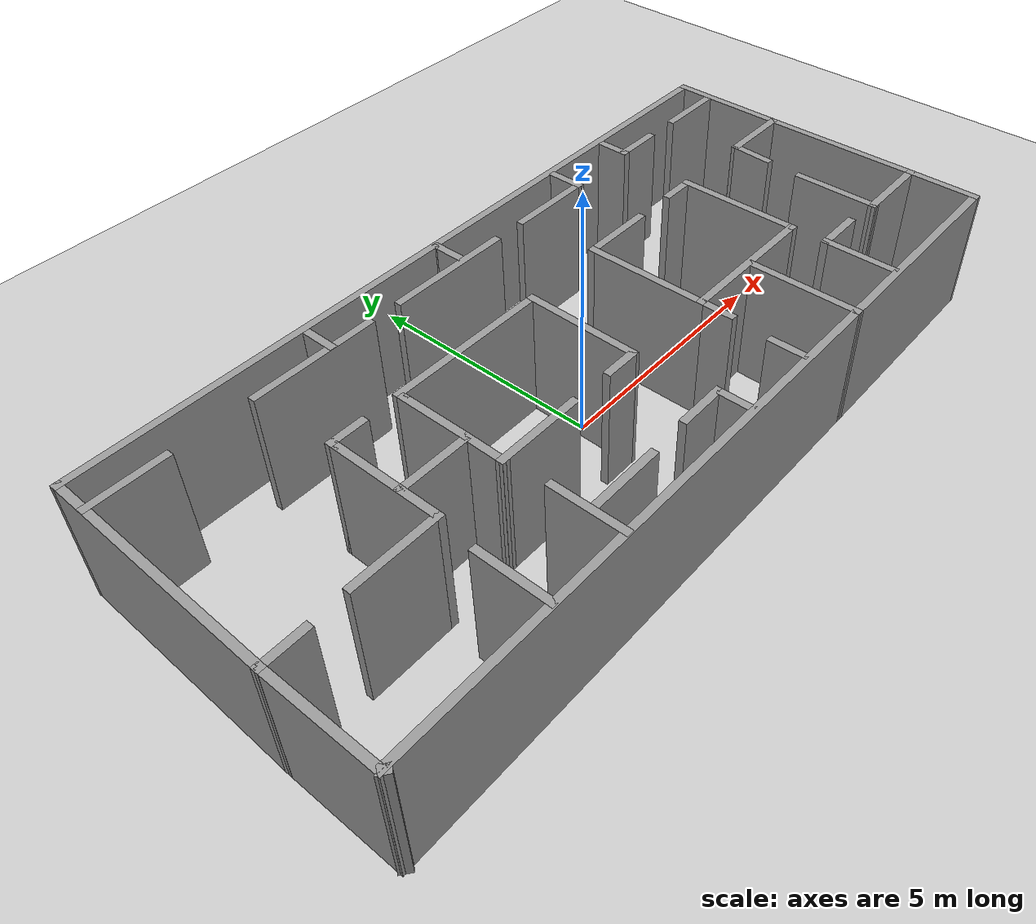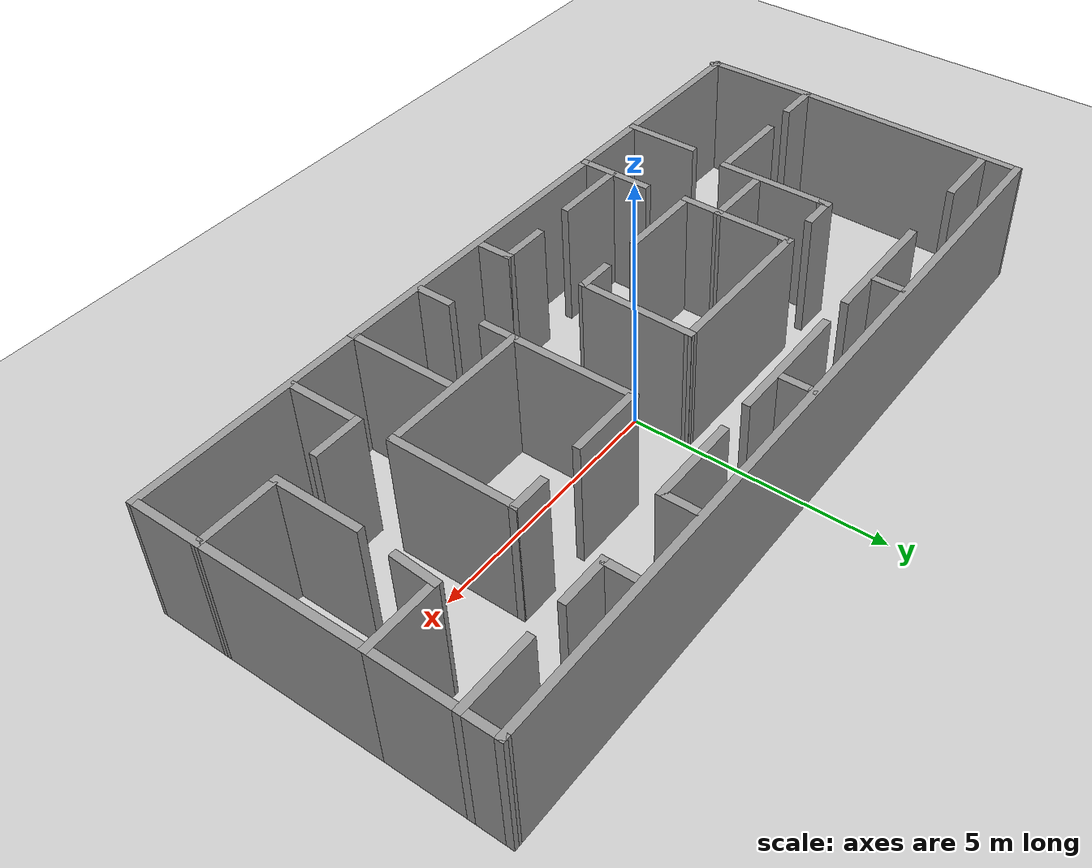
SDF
<sdf version='1.4'>
  <world name='default'>
    <!-- A global light source -->
    <include>
      <uri>model://sun</uri>
    </include>

    <!-- A ground plane -->
    <include>
      <uri>model://ground_plane</uri>
    </include>

    <physics type="ode">
      <real_time_update_rate>1000.0</real_time_update_rate>
      <max_step_size>0.001</max_step_size>
      <real_time_factor>1</real_time_factor>
      <ode>
        <solver>
          <type>quick</type>
          <iters>150</iters>
          <precon_iters>0</precon_iters>
          <sor>1.400000</sor>
          <use_dynamic_moi_rescaling>1</use_dynamic_moi_rescaling>
        </solver>
        <constraints>
          <cfm>0.00001</cfm>
          <erp>0.2</erp>
          <contact_max_correcting_vel>2000.000000</contact_max_correcting_vel>
          <contact_surface_layer>0.01000</contact_surface_layer>
        </constraints>
      </ode>
    </physics>

    <!-- A turtlebot symbol -->
    <include>
      <uri>model://turtlebot3_hotel</uri>
    </include>

    <scene>
      <ambient>0.4 0.4 0.4 1</ambient>
      <background>0.7 0.7 0.7 1</background>
      <shadows>true</shadows>
    </scene>

    <gui fullscreen='0'>
      <camera name='user_camera'>
        <pose>0.0 0.0 17.0 0 1.5708 0</pose>
        <view_controller>orbit</view_controller>
      </camera>
    </gui>
  </world>
</sdf>

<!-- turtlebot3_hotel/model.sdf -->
<sdf version='1.7'>
  <model name='hotel'>
    <pose>-0.021419 0.009748 0 0 -0 0</pose>
    <link name='Wall_101'>
      <collision name='Wall_101_Collision'>
        <geometry>
          <box>
            <size>1.5 0.15 2.5</size>
          </box>
        </geometry>
        <pose>0 0 1.25 0 -0 0</pose>
      </collision>
      <visual name='Wall_101_Visual'>
        <pose>0 0 1.25 0 -0 0</pose>
        <geometry>
          <box>
            <size>1.5 0.15 2.5</size>
          </box>
        </geometry>
        <material>
          <script>
            <uri>file://media/materials/scripts/gazebo.material</uri>
            <name>Gazebo/Grey</name>
          </script>
          <ambient>1 1 1 1</ambient>
        </material>
        <meta>
          <layer>0</layer>
        </meta>
      </visual>
      <pose>-4.60004 -2.64984 0 0 -0 -1.5708</pose>
    </link>
    <link name='Wall_103'>
      <collision name='Wall_103_Collision'>
        <geometry>
          <box>
            <size>1.5 0.15 2.5</size>
          </box>
        </geometry>
        <pose>0 0 1.25 0 -0 0</pose>
      </collision>
      <visual name='Wall_103_Visual'>
        <pose>0 0 1.25 0 -0 0</pose>
        <geometry>
          <box>
            <size>1.5 0.15 2.5</size>
          </box>
        </geometry>
        <material>
          <script>
            <uri>file://media/materials/scripts/gazebo.material</uri>
            <name>Gazebo/Grey</name>
          </script>
          <ambient>1 1 1 1</ambient>
        </material>
        <meta>
          <layer>0</layer>
        </meta>
      </visual>
      <pose>-3.06004 -2.65984 0 0 -0 -1.5708</pose>
    </link>
    <link name='Wall_105'>
      <collision name='Wall_105_Collision'>
        <geometry>
          <box>
            <size>1.5 0.15 2.5</size>
          </box>
        </geometry>
        <pose>0 0 1.25 0 -0 0</pose>
      </collision>
      <visual name='Wall_105_Visual'>
        <pose>0 0 1.25 0 -0 0</pose>
        <geometry>
          <box>
            <size>1.5 0.15 2.5</size>
          </box>
        </geometry>
        <material>
          <script>
            <uri>file://media/materials/scripts/gazebo.material</uri>
            <name>Gazebo/Grey</name>
          </script>
          <ambient>1 1 1 1</ambient>
        </material>
        <meta>
          <layer>0</layer>
        </meta>
      </visual>
      <pose>-2.33504 -2.71484 0 0 -0 0</pose>
    </link>
    <link name='Wall_107'>
      <collision name='Wall_107_Collision'>
        <geometry>
          <box>
            <size>1 0.15 2.5</size>
          </box>
        </geometry>
        <pose>0 0 1.25 0 -0 0</pose>
      </collision>
      <visual name='Wall_107_Visual'>
        <pose>0 0 1.25 0 -0 0</pose>
        <geometry>
          <box>
            <size>1 0.15 2.5</size>
          </box>
        </geometry>
        <material>
          <script>
            <uri>file://media/materials/scripts/gazebo.material</uri>
            <name>Gazebo/Grey</name>
          </script>
          <ambient>1 1 1 1</ambient>
        </material>
        <meta>
          <layer>0</layer>
        </meta>
      </visual>
      <pose>-0.365044 -2.68484 0 0 -0 0</pose>
    </link>
    <link name='Wall_108'>
      <collision name='Wall_108_Collision'>
        <geometry>
          <box>
            <size>0.75 0.15 2.5</size>
          </box>
        </geometry>
        <pose>0 0 1.25 0 -0 0</pose>
      </collision>
      <visual name='Wall_108_Visual'>
        <pose>0 0 1.25 0 -0 0</pose>
        <geometry>
          <box>
            <size>0.75 0.15 2.5</size>
          </box>
        </geometry>
        <material>
          <script>
            <uri>file://media/materials/scripts/gazebo.material</uri>
            <name>Gazebo/Grey</name>
          </script>
          <ambient>1 1 1 1</ambient>
        </material>
        <meta>
          <layer>0</layer>
        </meta>
      </visual>
      <pose>0.059956 -2.98484 0 0 -0 -1.5708</pose>
    </link>
    <link name='Wall_111'>
      <collision name='Wall_111_Collision'>
        <geometry>
          <box>
            <size>0.75 0.15 2.5</size>
          </box>
        </geometry>
        <pose>0 0 1.25 0 -0 0</pose>
      </collision>
      <visual name='Wall_111_Visual'>
        <pose>0 0 1.25 0 -0 0</pose>
        <geometry>
          <box>
            <size>0.75 0.15 2.5</size>
          </box>
        </geometry>
        <material>
          <script>
            <uri>file://media/materials/scripts/gazebo.material</uri>
            <name>Gazebo/Grey</name>
          </script>
          <ambient>1 1 1 1</ambient>
        </material>
        <meta>
          <layer>0</layer>
        </meta>
      </visual>
      <pose>1.61996 -2.98484 0 0 -0 -1.5708</pose>
    </link>
    <link name='Wall_113'>
      <collision name='Wall_113_Collision'>
        <geometry>
          <box>
            <size>4.63001 0.15 2.5</size>
          </box>
        </geometry>
        <pose>0 0 1.25 0 -0 0</pose>
      </collision>
      <visual name='Wall_113_Visual'>
        <pose>0 0 1.25 0 -0 0</pose>
        <geometry>
          <box>
            <size>4.63001 0.15 2.5</size>
          </box>
        </geometry>
        <material>
          <script>
            <uri>file://media/materials/scripts/gazebo.material</uri>
            <name>Gazebo/Grey</name>
          </script>
          <ambient>1 1 1 1</ambient>
        </material>
        <meta>
          <layer>0</layer>
        </meta>
      </visual>
      <pose>5.38996 -3.36984 0 0 -0 0.002232</pose>
    </link>
    <link name='Wall_114'>
      <collision name='Wall_114_Collision'>
        <geometry>
          <box>
            <size>1.5 0.15 2.5</size>
          </box>
        </geometry>
        <pose>0 0 1.25 0 -0 0</pose>
      </collision>
      <visual name='Wall_114_Visual'>
        <pose>0 0 1.25 0 -0 0</pose>
        <geometry>
          <box>
            <size>1.5 0.15 2.5</size>
          </box>
        </geometry>
        <material>
          <script>
            <uri>file://media/materials/scripts/gazebo.material</uri>
            <name>Gazebo/Grey</name>
          </script>
          <ambient>1 1 1 1</ambient>
        </material>
        <meta>
          <layer>0</layer>
        </meta>
      </visual>
      <pose>7.62996 -2.68984 0 0 -0 1.5708</pose>
    </link>
    <link name='Wall_115'>
      <collision name='Wall_115_Collision'>
        <geometry>
          <box>
            <size>1.63003 0.15 2.5</size>
          </box>
        </geometry>
        <pose>0 0 1.25 0 -0 0</pose>
      </collision>
      <visual name='Wall_115_Visual'>
        <pose>0 0 1.25 0 -0 0</pose>
        <geometry>
          <box>
            <size>1.63003 0.15 2.5</size>
          </box>
        </geometry>
        <material>
          <script>
            <uri>file://media/materials/scripts/gazebo.material</uri>
            <name>Gazebo/Grey</name>
          </script>
          <ambient>1 1 1 1</ambient>
        </material>
        <meta>
          <layer>0</layer>
        </meta>
      </visual>
      <pose>6.88996 -2.01984 0 0 -0 -3.13484</pose>
    </link>
    <link name='Wall_116'>
      <collision name='Wall_116_Collision'>
        <geometry>
          <box>
            <size>1.75 0.15 2.5</size>
          </box>
        </geometry>
        <pose>0 0 1.25 0 -0 0</pose>
      </collision>
      <visual name='Wall_116_Visual'>
        <pose>0 0 1.25 0 -0 0</pose>
        <geometry>
          <box>
            <size>1.75 0.15 2.5</size>
          </box>
        </geometry>
        <material>
          <script>
            <uri>file://media/materials/scripts/gazebo.material</uri>
            <name>Gazebo/Grey</name>
          </script>
          <ambient>1 1 1 1</ambient>
        </material>
        <meta>
          <layer>0</layer>
        </meta>
      </visual>
      <pose>6.14996 -1.22484 0 0 -0 1.5708</pose>
    </link>
    <link name='Wall_118'>
      <collision name='Wall_118_Collision'>
        <geometry>
          <box>
            <size>1 0.15 2.5</size>
          </box>
        </geometry>
        <pose>0 0 1.25 0 -0 0</pose>
      </collision>
      <visual name='Wall_118_Visual'>
        <pose>0 0 1.25 0 -0 0</pose>
        <geometry>
          <box>
            <size>1 0.15 2.5</size>
          </box>
        </geometry>
        <material>
          <script>
            <uri>file://media/materials/scripts/gazebo.material</uri>
            <name>Gazebo/Grey</name>
          </script>
          <ambient>1 1 1 1</ambient>
        </material>
        <meta>
          <layer>0</layer>
        </meta>
      </visual>
      <pose>4.99496 -1.94484 0 0 -0 3.14159</pose>
    </link>
    <link name='Wall_119'>
      <collision name='Wall_119_Collision'>
        <geometry>
          <box>
            <size>1.5 0.15 2.5</size>
          </box>
        </geometry>
        <pose>0 0 1.25 0 -0 0</pose>
      </collision>
      <visual name='Wall_119_Visual'>
        <pose>0 0 1.25 0 -0 0</pose>
        <geometry>
          <box>
            <size>1.5 0.15 2.5</size>
          </box>
        </geometry>
        <material>
          <script>
            <uri>file://media/materials/scripts/gazebo.material</uri>
            <name>Gazebo/Grey</name>
          </script>
          <ambient>1 1 1 1</ambient>
        </material>
        <meta>
          <layer>0</layer>
        </meta>
      </visual>
      <pose>4.56996 -2.61984 0 0 -0 -1.5708</pose>
    </link>
    <link name='Wall_124'>
      <collision name='Wall_124_Collision'>
        <geometry>
          <box>
            <size>1.5 0.15 2.5</size>
          </box>
        </geometry>
        <pose>0 0 1.25 0 -0 0</pose>
      </collision>
      <visual name='Wall_124_Visual'>
        <pose>0 0 1.25 0 -0 0</pose>
        <geometry>
          <box>
            <size>1.5 0.15 2.5</size>
          </box>
        </geometry>
        <material>
          <script>
            <uri>file://media/materials/scripts/gazebo.material</uri>
            <name>Gazebo/Grey</name>
          </script>
          <ambient>1 1 1 1</ambient>
        </material>
        <meta>
          <layer>0</layer>
        </meta>
      </visual>
      <pose>6.93496 1.12516 0 0 -0 0</pose>
    </link>
    <link name='Wall_126'>
      <collision name='Wall_126_Collision'>
        <geometry>
          <box>
            <size>3.29006 0.15 2.5</size>
          </box>
        </geometry>
        <pose>0 0 1.25 0 -0 0</pose>
      </collision>
      <visual name='Wall_126_Visual'>
        <pose>0 0 1.25 0 -0 0</pose>
        <geometry>
          <box>
            <size>3.29006 0.15 2.5</size>
          </box>
        </geometry>
        <material>
          <script>
            <uri>file://media/materials/scripts/gazebo.material</uri>
            <name>Gazebo/Grey</name>
          </script>
          <ambient>1 1 1 1</ambient>
        </material>
        <meta>
          <layer>0</layer>
        </meta>
      </visual>
      <pose>7.61996 -0.444841 0 0 -0 -1.56443</pose>
    </link>
    <link name='Wall_128'>
      <collision name='Wall_128_Collision'>
        <geometry>
          <box>
            <size>0.911643 0.15 2.5</size>
          </box>
        </geometry>
        <pose>0 0 1.25 0 -0 0</pose>
      </collision>
      <visual name='Wall_128_Visual'>
        <pose>0 0 1.25 0 -0 0</pose>
        <geometry>
          <box>
            <size>0.911643 0.15 2.5</size>
          </box>
        </geometry>
        <material>
          <script>
            <uri>file://media/materials/scripts/gazebo.material</uri>
            <name>Gazebo/Grey</name>
          </script>
          <ambient>1 1 1 1</ambient>
        </material>
        <meta>
          <layer>0</layer>
        </meta>
      </visual>
      <pose>6.23496 0.745159 0 0 -0 1.5051</pose>
    </link>
    <link name='Wall_130'>
      <collision name='Wall_130_Collision'>
        <geometry>
          <box>
            <size>2.43 0.15 2.5</size>
          </box>
        </geometry>
        <pose>0 0 1.25 0 -0 0</pose>
      </collision>
      <visual name='Wall_130_Visual'>
        <pose>0 0 1.25 0 -0 0</pose>
        <geometry>
          <box>
            <size>2.43 0.15 2.5</size>
          </box>
        </geometry>
        <material>
          <script>
            <uri>file://media/materials/scripts/gazebo.material</uri>
            <name>Gazebo/Grey</name>
          </script>
          <ambient>1 1 1 1</ambient>
        </material>
        <meta>
          <layer>0</layer>
        </meta>
      </visual>
      <pose>7.60996 2.26516 0 0 -0 1.5708</pose>
    </link>
    <link name='Wall_132'>
      <collision name='Wall_132_Collision'>
        <geometry>
          <box>
            <size>15.3003 0.15 2.5</size>
          </box>
        </geometry>
        <pose>0 0 1.25 0 -0 0</pose>
      </collision>
      <visual name='Wall_132_Visual'>
        <pose>0 0 1.25 0 -0 0</pose>
        <geometry>
          <box>
            <size>15.3003 0.15 2.5</size>
          </box>
        </geometry>
        <material>
          <script>
            <uri>file://media/materials/scripts/gazebo.material</uri>
            <name>Gazebo/Grey</name>
          </script>
          <ambient>1 1 1 1</ambient>
        </material>
        <meta>
          <layer>0</layer>
        </meta>
      </visual>
      <pose>0.034956 3.39516 0 0 -0 -3.14027</pose>
    </link>
    <link name='Wall_133'>
      <collision name='Wall_133_Collision'>
        <geometry>
          <box>
            <size>4.7307 0.15 2.5</size>
          </box>
        </geometry>
        <pose>0 0 1.25 0 -0 0</pose>
      </collision>
      <visual name='Wall_133_Visual'>
        <pose>0 0 1.25 0 -0 0</pose>
        <geometry>
          <box>
            <size>4.7307 0.15 2.5</size>
          </box>
        </geometry>
        <material>
          <script>
            <uri>file://media/materials/scripts/gazebo.material</uri>
            <name>Gazebo/Grey</name>
          </script>
          <ambient>1 1 1 1</ambient>
        </material>
        <meta>
          <layer>0</layer>
        </meta>
      </visual>
      <pose>-7.58004 1.09516 0 0 -0 -1.58826</pose>
    </link>
    <link name='Wall_135'>
      <collision name='Wall_135_Collision'>
        <geometry>
          <box>
            <size>1.5 0.15 2.5</size>
          </box>
        </geometry>
        <pose>0 0 1.25 0 -0 0</pose>
      </collision>
      <visual name='Wall_135_Visual'>
        <pose>0 0 1.25 0 -0 0</pose>
        <geometry>
          <box>
            <size>1.5 0.15 2.5</size>
          </box>
        </geometry>
        <material>
          <script>
            <uri>file://media/materials/scripts/gazebo.material</uri>
            <name>Gazebo/Grey</name>
          </script>
          <ambient>1 1 1 1</ambient>
        </material>
        <meta>
          <layer>0</layer>
        </meta>
      </visual>
      <pose>-6.87504 2.70516 0 0 -0 0</pose>
    </link>
    <link name='Wall_137'>
      <collision name='Wall_137_Collision'>
        <geometry>
          <box>
            <size>2.5 0.15 2.5</size>
          </box>
        </geometry>
        <pose>0 0 1.25 0 -0 0</pose>
      </collision>
      <visual name='Wall_137_Visual'>
        <pose>0 0 1.25 0 -0 0</pose>
        <geometry>
          <box>
            <size>2.5 0.15 2.5</size>
          </box>
        </geometry>
        <material>
          <script>
            <uri>file://media/materials/scripts/gazebo.material</uri>
            <name>Gazebo/Grey</name>
          </script>
          <ambient>1 1 1 1</ambient>
        </material>
        <meta>
          <layer>0</layer>
        </meta>
      </visual>
      <pose>-3.42504 2.69516 0 0 -0 0</pose>
    </link>
    <link name='Wall_139'>
      <collision name='Wall_139_Collision'>
        <geometry>
          <box>
            <size>2.5 0.15 2.5</size>
          </box>
        </geometry>
        <pose>0 0 1.25 0 -0 0</pose>
      </collision>
      <visual name='Wall_139_Visual'>
        <pose>0 0 1.25 0 -0 0</pose>
        <geometry>
          <box>
            <size>2.5 0.15 2.5</size>
          </box>
        </geometry>
        <material>
          <script>
            <uri>file://media/materials/scripts/gazebo.material</uri>
            <name>Gazebo/Grey</name>
          </script>
          <ambient>1 1 1 1</ambient>
        </material>
        <meta>
          <layer>0</layer>
        </meta>
      </visual>
      <pose>-0.365044 2.68516 0 0 -0 0</pose>
    </link>
    <link name='Wall_141'>
      <collision name='Wall_141_Collision'>
        <geometry>
          <box>
            <size>1.75 0.15 2.5</size>
          </box>
        </geometry>
        <pose>0 0 1.25 0 -0 0</pose>
      </collision>
      <visual name='Wall_141_Visual'>
        <pose>0 0 1.25 0 -0 0</pose>
        <geometry>
          <box>
            <size>1.75 0.15 2.5</size>
          </box>
        </geometry>
        <material>
          <script>
            <uri>file://media/materials/scripts/gazebo.material</uri>
            <name>Gazebo/Grey</name>
          </script>
          <ambient>1 1 1 1</ambient>
        </material>
        <meta>
          <layer>0</layer>
        </meta>
      </visual>
      <pose>2.33996 2.68516 0 0 -0 0</pose>
    </link>
    <link name='Wall_142'>
      <collision name='Wall_142_Collision'>
        <geometry>
          <box>
            <size>0.75 0.15 2.5</size>
          </box>
        </geometry>
        <pose>0 0 1.25 0 -0 0</pose>
      </collision>
      <visual name='Wall_142_Visual'>
        <pose>0 0 1.25 0 -0 0</pose>
        <geometry>
          <box>
            <size>0.75 0.15 2.5</size>
          </box>
        </geometry>
        <material>
          <script>
            <uri>file://media/materials/scripts/gazebo.material</uri>
            <name>Gazebo/Grey</name>
          </script>
          <ambient>1 1 1 1</ambient>
        </material>
        <meta>
          <layer>0</layer>
        </meta>
      </visual>
      <pose>3.13996 2.98516 0 0 -0 1.5708</pose>
    </link>
    <link name='Wall_144'>
      <collision name='Wall_144_Collision'>
        <geometry>
          <box>
            <size>0.75 0.15 2.5</size>
          </box>
        </geometry>
        <pose>0 0 1.25 0 -0 0</pose>
      </collision>
      <visual name='Wall_144_Visual'>
        <pose>0 0 1.25 0 -0 0</pose>
        <geometry>
          <box>
            <size>0.75 0.15 2.5</size>
          </box>
        </geometry>
        <material>
          <script>
            <uri>file://media/materials/scripts/gazebo.material</uri>
            <name>Gazebo/Grey</name>
          </script>
          <ambient>1 1 1 1</ambient>
        </material>
        <meta>
          <layer>0</layer>
        </meta>
      </visual>
      <pose>4.63996 3.03516 0 0 -0 -1.5708</pose>
    </link>
    <link name='Wall_145'>
      <collision name='Wall_145_Collision'>
        <geometry>
          <box>
            <size>1 0.15 2.5</size>
          </box>
        </geometry>
        <pose>0 0 1.25 0 -0 0</pose>
      </collision>
      <visual name='Wall_145_Visual'>
        <pose>0 0 1.25 0 -0 0</pose>
        <geometry>
          <box>
            <size>1 0.15 2.5</size>
          </box>
        </geometry>
        <material>
          <script>
            <uri>file://media/materials/scripts/gazebo.material</uri>
            <name>Gazebo/Grey</name>
          </script>
          <ambient>1 1 1 1</ambient>
        </material>
        <meta>
          <layer>0</layer>
        </meta>
      </visual>
      <pose>5.06496 2.73516 0 0 -0 0</pose>
    </link>
    <link name='Wall_147'>
      <collision name='Wall_147_Collision'>
        <geometry>
          <box>
            <size>1.5 0.15 2.5</size>
          </box>
        </geometry>
        <pose>0 0 1.25 0 -0 0</pose>
      </collision>
      <visual name='Wall_147_Visual'>
        <pose>0 0 1.25 0 -0 0</pose>
        <geometry>
          <box>
            <size>1.5 0.15 2.5</size>
          </box>
        </geometry>
        <material>
          <script>
            <uri>file://media/materials/scripts/gazebo.material</uri>
            <name>Gazebo/Grey</name>
          </script>
          <ambient>1 1 1 1</ambient>
        </material>
        <meta>
          <layer>0</layer>
        </meta>
      </visual>
      <pose>6.93496 2.72516 0 0 -0 0</pose>
    </link>
    <link name='Wall_149'>
      <collision name='Wall_149_Collision'>
        <geometry>
          <box>
            <size>0.75 0.15 2.5</size>
          </box>
        </geometry>
        <pose>0 0 1.25 0 -0 0</pose>
      </collision>
      <visual name='Wall_149_Visual'>
        <pose>0 0 1.25 0 -0 0</pose>
        <geometry>
          <box>
            <size>0.75 0.15 2.5</size>
          </box>
        </geometry>
        <material>
          <script>
            <uri>file://media/materials/scripts/gazebo.material</uri>
            <name>Gazebo/Grey</name>
          </script>
          <ambient>1 1 1 1</ambient>
        </material>
        <meta>
          <layer>0</layer>
        </meta>
      </visual>
      <pose>-3.06004 3.00516 0 0 -0 1.5708</pose>
    </link>
    <link name='Wall_154'>
      <collision name='Wall_154_Collision'>
        <geometry>
          <box>
            <size>0.15 0.15 2.5</size>
          </box>
        </geometry>
        <pose>0 0 1.25 0 -0 0</pose>
      </collision>
      <visual name='Wall_154_Visual'>
        <pose>0 0 1.25 0 -0 0</pose>
        <geometry>
          <box>
            <size>0.15 0.15 2.5</size>
          </box>
        </geometry>
        <material>
          <script>
            <uri>file://media/materials/scripts/gazebo.material</uri>
            <name>Gazebo/Grey</name>
          </script>
          <ambient>1 1 1 1</ambient>
        </material>
        <meta>
          <layer>0</layer>
        </meta>
      </visual>
      <pose>-0.005934 3.35968 0 0 -0 0</pose>
    </link>
    <link name='Wall_156'>
      <collision name='Wall_156_Collision'>
        <geometry>
          <box>
            <size>0.75 0.15 2.5</size>
          </box>
        </geometry>
        <pose>0 0 1.25 0 -0 0</pose>
      </collision>
      <visual name='Wall_156_Visual'>
        <pose>0 0 1.25 0 -0 0</pose>
        <geometry>
          <box>
            <size>0.75 0.15 2.5</size>
          </box>
        </geometry>
        <material>
          <script>
            <uri>file://media/materials/scripts/gazebo.material</uri>
            <name>Gazebo/Grey</name>
          </script>
          <ambient>1 1 1 1</ambient>
        </material>
        <meta>
          <layer>0</layer>
        </meta>
      </visual>
      <pose>-0.005934 3.05968 0 0 -0 -1.5708</pose>
    </link>
    <link name='Wall_59'>
      <collision name='Wall_59_Collision'>
        <geometry>
          <box>
            <size>0.901596 0.15 2.5</size>
          </box>
        </geometry>
        <pose>0 0 1.25 0 -0 0</pose>
      </collision>
      <visual name='Wall_59_Visual'>
        <pose>0 0 1.25 0 -0 0</pose>
        <geometry>
          <box>
            <size>0.901596 0.15 2.5</size>
          </box>
        </geometry>
        <material>
          <script>
            <uri>file://media/materials/scripts/gazebo.material</uri>
            <name>Gazebo/Grey</name>
          </script>
          <ambient>1 1 1 1</ambient>
        </material>
        <meta>
          <layer>0</layer>
        </meta>
      </visual>
      <pose>-7.24446 -1.19237 0 0 -0 0.006566</pose>
    </link>
    <link name='Wall_61'>
      <collision name='Wall_61_Collision'>
        <geometry>
          <box>
            <size>1.75 0.15 2.5</size>
          </box>
        </geometry>
        <pose>0 0 1.25 0 -0 0</pose>
      </collision>
      <visual name='Wall_61_Visual'>
        <pose>0 0 1.25 0 -0 0</pose>
        <geometry>
          <box>
            <size>1.75 0.15 2.5</size>
          </box>
        </geometry>
        <material>
          <script>
            <uri>file://media/materials/scripts/gazebo.material</uri>
            <name>Gazebo/Grey</name>
          </script>
          <ambient>1 1 1 1</ambient>
        </material>
        <meta>
          <layer>0</layer>
        </meta>
      </visual>
      <pose>-5.29799 -1.15668 0 0 -0 0</pose>
    </link>
    <link name='Wall_62'>
      <collision name='Wall_62_Collision'>
        <geometry>
          <box>
            <size>2.25 0.15 2.5</size>
          </box>
        </geometry>
        <pose>0 0 1.25 0 -0 0</pose>
      </collision>
      <visual name='Wall_62_Visual'>
        <pose>0 0 1.25 0 -0 0</pose>
        <geometry>
          <box>
            <size>2.25 0.15 2.5</size>
          </box>
        </geometry>
        <material>
          <script>
            <uri>file://media/materials/scripts/gazebo.material</uri>
            <name>Gazebo/Grey</name>
          </script>
          <ambient>1 1 1 1</ambient>
        </material>
        <meta>
          <layer>0</layer>
        </meta>
      </visual>
      <pose>-4.49799 -0.106683 0 0 -0 1.5708</pose>
    </link>
    <link name='Wall_63'>
      <collision name='Wall_63_Collision'>
        <geometry>
          <box>
            <size>0.25 0.15 2.5</size>
          </box>
        </geometry>
        <pose>0 0 1.25 0 -0 0</pose>
      </collision>
      <visual name='Wall_63_Visual'>
        <pose>0 0 1.25 0 -0 0</pose>
        <geometry>
          <box>
            <size>0.25 0.15 2.5</size>
          </box>
        </geometry>
        <material>
          <script>
            <uri>file://media/materials/scripts/gazebo.material</uri>
            <name>Gazebo/Grey</name>
          </script>
          <ambient>1 1 1 1</ambient>
        </material>
        <meta>
          <layer>0</layer>
        </meta>
      </visual>
      <pose>-4.49799 0.993317 0 0 -0 1.5708</pose>
    </link>
    <link name='Wall_64'>
      <collision name='Wall_64_Collision'>
        <geometry>
          <box>
            <size>0.75 0.15 2.5</size>
          </box>
        </geometry>
        <pose>0 0 1.25 0 -0 0</pose>
      </collision>
      <visual name='Wall_64_Visual'>
        <pose>0 0 1.25 0 -0 0</pose>
        <geometry>
          <box>
            <size>0.75 0.15 2.5</size>
          </box>
        </geometry>
        <material>
          <script>
            <uri>file://media/materials/scripts/gazebo.material</uri>
            <name>Gazebo/Grey</name>
          </script>
          <ambient>1 1 1 1</ambient>
        </material>
        <meta>
          <layer>0</layer>
        </meta>
      </visual>
      <pose>-4.19799 1.04332 0 0 -0 0</pose>
    </link>
    <link name='Wall_66'>
      <collision name='Wall_66_Collision'>
        <geometry>
          <box>
            <size>1.5 0.15 2.5</size>
          </box>
        </geometry>
        <pose>0 0 1.25 0 -0 0</pose>
      </collision>
      <visual name='Wall_66_Visual'>
        <pose>0 0 1.25 0 -0 0</pose>
        <geometry>
          <box>
            <size>1.5 0.15 2.5</size>
          </box>
        </geometry>
        <material>
          <script>
            <uri>file://media/materials/scripts/gazebo.material</uri>
            <name>Gazebo/Grey</name>
          </script>
          <ambient>1 1 1 1</ambient>
        </material>
        <meta>
          <layer>0</layer>
        </meta>
      </visual>
      <pose>-3.81504 -0.404841 0 0 -0 0</pose>
    </link>
    <link name='Wall_67'>
      <collision name='Wall_67_Collision'>
        <geometry>
          <box>
            <size>1.5 0.15 2.5</size>
          </box>
        </geometry>
        <pose>0 0 1.25 0 -0 0</pose>
      </collision>
      <visual name='Wall_67_Visual'>
        <pose>0 0 1.25 0 -0 0</pose>
        <geometry>
          <box>
            <size>1.5 0.15 2.5</size>
          </box>
        </geometry>
        <material>
          <script>
            <uri>file://media/materials/scripts/gazebo.material</uri>
            <name>Gazebo/Grey</name>
          </script>
          <ambient>1 1 1 1</ambient>
        </material>
        <meta>
          <layer>0</layer>
        </meta>
      </visual>
      <pose>-3.14004 0.270159 0 0 -0 1.5708</pose>
    </link>
    <link name='Wall_68'>
      <collision name='Wall_68_Collision'>
        <geometry>
          <box>
            <size>0.25 0.15 2.5</size>
          </box>
        </geometry>
        <pose>0 0 1.25 0 -0 0</pose>
      </collision>
      <visual name='Wall_68_Visual'>
        <pose>0 0 1.25 0 -0 0</pose>
        <geometry>
          <box>
            <size>0.25 0.15 2.5</size>
          </box>
        </geometry>
        <material>
          <script>
            <uri>file://media/materials/scripts/gazebo.material</uri>
            <name>Gazebo/Grey</name>
          </script>
          <ambient>1 1 1 1</ambient>
        </material>
        <meta>
          <layer>0</layer>
        </meta>
      </visual>
      <pose>-3.14004 0.995159 0 0 -0 1.5708</pose>
    </link>
    <link name='Wall_69'>
      <collision name='Wall_69_Collision'>
        <geometry>
          <box>
            <size>3.25 0.15 2.5</size>
          </box>
        </geometry>
        <pose>0 0 1.25 0 -0 0</pose>
      </collision>
      <visual name='Wall_69_Visual'>
        <pose>0 0 1.25 0 -0 0</pose>
        <geometry>
          <box>
            <size>3.25 0.15 2.5</size>
          </box>
        </geometry>
        <material>
          <script>
            <uri>file://media/materials/scripts/gazebo.material</uri>
            <name>Gazebo/Grey</name>
          </script>
          <ambient>1 1 1 1</ambient>
        </material>
        <meta>
          <layer>0</layer>
        </meta>
      </visual>
      <pose>-1.59004 1.04516 0 0 -0 0</pose>
    </link>
    <link name='Wall_70'>
      <collision name='Wall_70_Collision'>
        <geometry>
          <box>
            <size>2.33037 0.15 2.5</size>
          </box>
        </geometry>
        <pose>0 0 1.25 0 -0 0</pose>
      </collision>
      <visual name='Wall_70_Visual'>
        <pose>0 0 1.25 0 -0 0</pose>
        <geometry>
          <box>
            <size>2.33037 0.15 2.5</size>
          </box>
        </geometry>
        <material>
          <script>
            <uri>file://media/materials/scripts/gazebo.material</uri>
            <name>Gazebo/Grey</name>
          </script>
          <ambient>1 1 1 1</ambient>
        </material>
        <meta>
          <layer>0</layer>
        </meta>
      </visual>
      <pose>-0.060044 -0.044841 0 0 -0 -1.58914</pose>
    </link>
    <link name='Wall_71'>
      <collision name='Wall_71_Collision'>
        <geometry>
          <box>
            <size>0.75 0.15 2.5</size>
          </box>
        </geometry>
        <pose>0 0 1.25 0 -0 0</pose>
      </collision>
      <visual name='Wall_71_Visual'>
        <pose>0 0 1.25 0 -0 0</pose>
        <geometry>
          <box>
            <size>0.75 0.15 2.5</size>
          </box>
        </geometry>
        <material>
          <script>
            <uri>file://media/materials/scripts/gazebo.material</uri>
            <name>Gazebo/Grey</name>
          </script>
          <ambient>1 1 1 1</ambient>
        </material>
        <meta>
          <layer>0</layer>
        </meta>
      </visual>
      <pose>-0.380044 -1.13484 0 0 -0 3.14159</pose>
    </link>
    <link name='Wall_73'>
      <collision name='Wall_73_Collision'>
        <geometry>
          <box>
            <size>0.870069 0.15 2.5</size>
          </box>
        </geometry>
        <pose>0 0 1.25 0 -0 0</pose>
      </collision>
      <visual name='Wall_73_Visual'>
        <pose>0 0 1.25 0 -0 0</pose>
        <geometry>
          <box>
            <size>0.870069 0.15 2.5</size>
          </box>
        </geometry>
        <material>
          <script>
            <uri>file://media/materials/scripts/gazebo.material</uri>
            <name>Gazebo/Grey</name>
          </script>
          <ambient>1 1 1 1</ambient>
        </material>
        <meta>
          <layer>0</layer>
        </meta>
      </visual>
      <pose>-3.14504 -0.764841 0 0 -0 -1.58468</pose>
    </link>
    <link name='Wall_74'>
      <collision name='Wall_74_Collision'>
        <geometry>
          <box>
            <size>1.75 0.15 2.5</size>
          </box>
        </geometry>
        <pose>0 0 1.25 0 -0 0</pose>
      </collision>
      <visual name='Wall_74_Visual'>
        <pose>0 0 1.25 0 -0 0</pose>
        <geometry>
          <box>
            <size>1.75 0.15 2.5</size>
          </box>
        </geometry>
        <material>
          <script>
            <uri>file://media/materials/scripts/gazebo.material</uri>
            <name>Gazebo/Grey</name>
          </script>
          <ambient>1 1 1 1</ambient>
        </material>
        <meta>
          <layer>0</layer>
        </meta>
      </visual>
      <pose>-2.35004 -1.12484 0 0 -0 0</pose>
    </link>
    <link name='Wall_77'>
      <collision name='Wall_77_Collision'>
        <geometry>
          <box>
            <size>1.5 0.15 2.5</size>
          </box>
        </geometry>
        <pose>0 0 1.25 0 -0 0</pose>
      </collision>
      <visual name='Wall_77_Visual'>
        <pose>0 0 1.25 0 -0 0</pose>
        <geometry>
          <box>
            <size>1.5 0.15 2.5</size>
          </box>
        </geometry>
        <material>
          <script>
            <uri>file://media/materials/scripts/gazebo.material</uri>
            <name>Gazebo/Grey</name>
          </script>
          <ambient>1 1 1 1</ambient>
        </material>
        <meta>
          <layer>0</layer>
        </meta>
      </visual>
      <pose>2.37496 1.12516 0 0 -0 3.14159</pose>
    </link>
    <link name='Wall_78'>
      <collision name='Wall_78_Collision'>
        <geometry>
          <box>
            <size>2.5 0.15 2.5</size>
          </box>
        </geometry>
        <pose>0 0 1.25 0 -0 0</pose>
      </collision>
      <visual name='Wall_78_Visual'>
        <pose>0 0 1.25 0 -0 0</pose>
        <geometry>
          <box>
            <size>2.5 0.15 2.5</size>
          </box>
        </geometry>
        <material>
          <script>
            <uri>file://media/materials/scripts/gazebo.material</uri>
            <name>Gazebo/Grey</name>
          </script>
          <ambient>1 1 1 1</ambient>
        </material>
        <meta>
          <layer>0</layer>
        </meta>
      </visual>
      <pose>1.69996 -0.049841 0 0 -0 -1.5708</pose>
    </link>
    <link name='Wall_79'>
      <collision name='Wall_79_Collision'>
        <geometry>
          <box>
            <size>3 0.15 2.5</size>
          </box>
        </geometry>
        <pose>0 0 1.25 0 -0 0</pose>
      </collision>
      <visual name='Wall_79_Visual'>
        <pose>0 0 1.25 0 -0 0</pose>
        <geometry>
          <box>
            <size>3 0.15 2.5</size>
          </box>
        </geometry>
        <material>
          <script>
            <uri>file://media/materials/scripts/gazebo.material</uri>
            <name>Gazebo/Grey</name>
          </script>
          <ambient>1 1 1 1</ambient>
        </material>
        <meta>
          <layer>0</layer>
        </meta>
      </visual>
      <pose>3.12496 -1.22484 0 0 -0 0</pose>
    </link>
    <link name='Wall_80'>
      <collision name='Wall_80_Collision'>
        <geometry>
          <box>
            <size>2.5 0.15 2.5</size>
          </box>
        </geometry>
        <pose>0 0 1.25 0 -0 0</pose>
      </collision>
      <visual name='Wall_80_Visual'>
        <pose>0 0 1.25 0 -0 0</pose>
        <geometry>
          <box>
            <size>2.5 0.15 2.5</size>
          </box>
        </geometry>
        <material>
          <script>
            <uri>file://media/materials/scripts/gazebo.material</uri>
            <name>Gazebo/Grey</name>
          </script>
          <ambient>1 1 1 1</ambient>
        </material>
        <meta>
          <layer>0</layer>
        </meta>
      </visual>
      <pose>4.54996 -0.049841 0 0 -0 1.5708</pose>
    </link>
    <link name='Wall_81'>
      <collision name='Wall_81_Collision'>
        <geometry>
          <box>
            <size>0.75 0.15 2.5</size>
          </box>
        </geometry>
        <pose>0 0 1.25 0 -0 0</pose>
      </collision>
      <visual name='Wall_81_Visual'>
        <pose>0 0 1.25 0 -0 0</pose>
        <geometry>
          <box>
            <size>0.75 0.15 2.5</size>
          </box>
        </geometry>
        <material>
          <script>
            <uri>file://media/materials/scripts/gazebo.material</uri>
            <name>Gazebo/Grey</name>
          </script>
          <ambient>1 1 1 1</ambient>
        </material>
        <meta>
          <layer>0</layer>
        </meta>
      </visual>
      <pose>4.24996 1.12516 0 0 -0 3.14159</pose>
    </link>
    <link name='Wall_83'>
      <collision name='Wall_83_Collision'>
        <geometry>
          <box>
            <size>0.75 0.15 2.5</size>
          </box>
        </geometry>
        <pose>0 0 1.25 0 -0 0</pose>
      </collision>
      <visual name='Wall_83_Visual'>
        <pose>0 0 1.25 0 -0 0</pose>
        <geometry>
          <box>
            <size>0.75 0.15 2.5</size>
          </box>
        </geometry>
        <material>
          <script>
            <uri>file://media/materials/scripts/gazebo.material</uri>
            <name>Gazebo/Grey</name>
          </script>
          <ambient>1 1 1 1</ambient>
        </material>
        <meta>
          <layer>0</layer>
        </meta>
      </visual>
      <pose>1.69996 -1.52484 0 0 -0 -1.5708</pose>
    </link>
    <link name='Wall_86'>
      <collision name='Wall_86_Collision'>
        <geometry>
          <box>
            <size>2.25 0.15 2.5</size>
          </box>
        </geometry>
        <pose>0 0 1.25 0 -0 0</pose>
      </collision>
      <visual name='Wall_86_Visual'>
        <pose>0 0 1.25 0 -0 0</pose>
        <geometry>
          <box>
            <size>2.25 0.15 2.5</size>
          </box>
        </geometry>
        <material>
          <script>
            <uri>file://media/materials/scripts/gazebo.material</uri>
            <name>Gazebo/Grey</name>
          </script>
          <ambient>1 1 1 1</ambient>
        </material>
        <meta>
          <layer>0</layer>
        </meta>
      </visual>
      <pose>3.14996 -2.32484 0 0 -0 -1.5708</pose>
    </link>
    <link name='Wall_87'>
      <collision name='Wall_87_Collision'>
        <geometry>
          <box>
            <size>10.9001 0.15 2.5</size>
          </box>
        </geometry>
        <pose>0 0 1.25 0 -0 0</pose>
      </collision>
      <visual name='Wall_87_Visual'>
        <pose>0 0 1.25 0 -0 0</pose>
        <geometry>
          <box>
            <size>10.9001 0.15 2.5</size>
          </box>
        </geometry>
        <material>
          <script>
            <uri>file://media/materials/scripts/gazebo.material</uri>
            <name>Gazebo/Grey</name>
          </script>
          <ambient>1 1 1 1</ambient>
        </material>
        <meta>
          <layer>0</layer>
        </meta>
      </visual>
      <pose>-2.22504 -3.35484 0 0 -0 3.13787</pose>
    </link>
    <link name='Wall_88'>
      <collision name='Wall_88_Collision'>
        <geometry>
          <box>
            <size>0.15 0.15 2.5</size>
          </box>
        </geometry>
        <pose>0 0 1.25 0 -0 0</pose>
      </collision>
      <visual name='Wall_88_Visual'>
        <pose>0 0 1.25 0 -0 0</pose>
        <geometry>
          <box>
            <size>0.15 0.15 2.5</size>
          </box>
        </geometry>
        <material>
          <script>
            <uri>file://media/materials/scripts/gazebo.material</uri>
            <name>Gazebo/Grey</name>
          </script>
          <ambient>1 1 1 1</ambient>
        </material>
        <meta>
          <layer>0</layer>
        </meta>
      </visual>
      <pose>-7.60004 -3.33484 0 0 -0 0</pose>
    </link>
    <link name='Wall_91'>
      <collision name='Wall_91_Collision'>
        <geometry>
          <box>
            <size>0.214031 0.15 2.5</size>
          </box>
        </geometry>
        <pose>0 0 1.25 0 -0 0</pose>
      </collision>
      <visual name='Wall_91_Visual'>
        <pose>0 0 1.25 0 -0 0</pose>
        <geometry>
          <box>
            <size>0.214031 0.15 2.5</size>
          </box>
        </geometry>
        <material>
          <script>
            <uri>file://media/materials/scripts/gazebo.material</uri>
            <name>Gazebo/Grey</name>
          </script>
          <ambient>1 1 1 1</ambient>
        </material>
        <meta>
          <layer>0</layer>
        </meta>
      </visual>
      <pose>-7.57504 -3.35484 0 0 -0 -0.674741</pose>
    </link>
    <link name='Wall_98'>
      <collision name='Wall_98_Collision'>
        <geometry>
          <box>
            <size>2.29009 0.15 2.5</size>
          </box>
        </geometry>
        <pose>0 0 1.25 0 -0 0</pose>
      </collision>
      <visual name='Wall_98_Visual'>
        <pose>0 0 1.25 0 -0 0</pose>
        <geometry>
          <box>
            <size>2.29009 0.15 2.5</size>
          </box>
        </geometry>
        <material>
          <script>
            <uri>file://media/materials/scripts/gazebo.material</uri>
            <name>Gazebo/Grey</name>
          </script>
          <ambient>1 1 1 1</ambient>
        </material>
        <meta>
          <layer>0</layer>
        </meta>
      </visual>
      <pose>-7.61004 -2.26484 0 0 -0 -1.56145</pose>
    </link>
    <static>1</static>
  </model>
</sdf>
